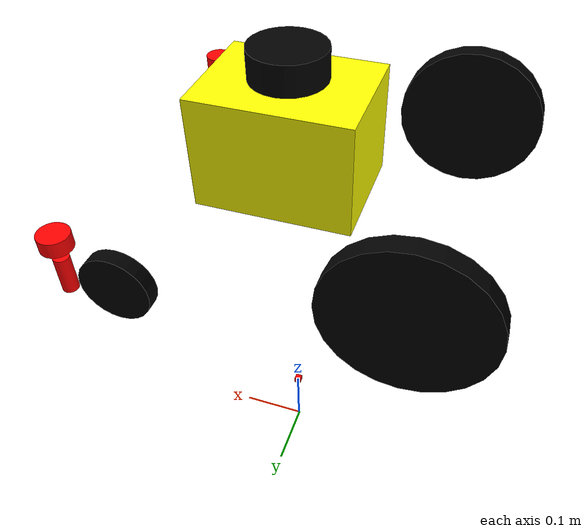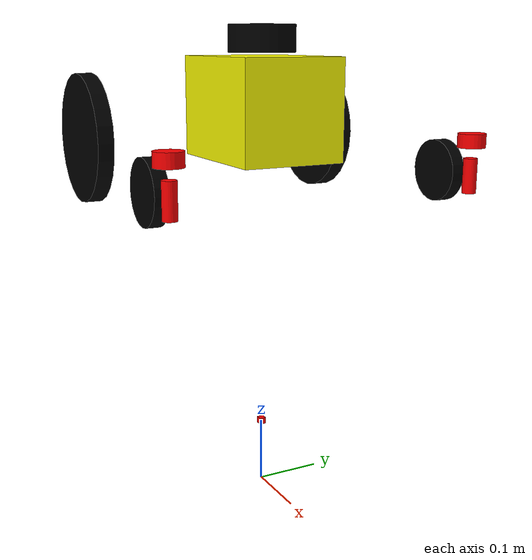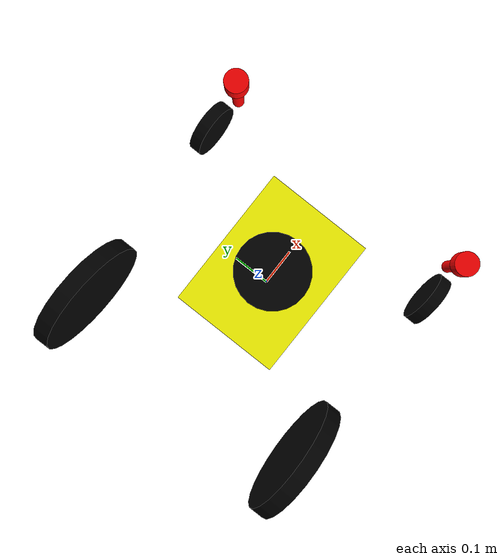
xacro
<?xml version="1.0" encoding="utf-8"?>
<robot name="aug_2024" xmlns:xacro="http://www.ros.org/wiki/xacro">
<xacro:arg name="use_sim" default="false"/>
  <material name="white">
    <color rgba="1 1 1 1"/>
  </material>

  <material name="black">
    <color rgba="0 0 0 1"/>
  </material>

  <material name="red">
    <color rgba="1 0 0 1"/>
  </material>

   <link name="base_link">
    <visual>
      <geometry>
        <box size=".01 .01 .01"/> <!-- 20x18x20 inches -->
      </geometry>
      <material name="red"/>
    </visual>
    <collision>
      <geometry>
        <box size="0 0 0"/>
      </geometry>
    </collision>
    <inertial>
       <mass value="10"/>
       <inertia ixx="0.4" ixy="0.0" ixz="0.0" iyy="0.4" iyz="0.0" izz="0.2"/>
    </inertial>
  </link>

<link name="base_footprint"/>

<joint name="base_joint" type="fixed">
  <parent link="base_footprint"/>
  <child link="base_link"/>
  <origin xyz="0 0 0.1016" rpy="0 0 0"/>
</joint>

<link name="chassis_link">
  <visual>
    <geometry>
      <box size="0.208 0.1572 0.15"/> <!-- 20x18x20 inches -->
    </geometry>
    <material name="chassis_color">
      <color rgba="1 1 0"/>  <!-- Light gray color, adjust as needed -->
    </material>
  </visual>
  <collision>
    <geometry>
      <box size="0.208 0.1572 0.15"/> <!-- 20x18x20 inches -->
    </geometry>
  </collision>
  <inertial>
    <mass value="10"/>  <!-- Adjust mass as appropriate for your robot -->
    <inertia ixx="0.3729" ixy="0.0" ixz="0.0"
             iyy="0.3929" iyz="0.0"
             izz="0.3729"/>
    <!-- Inertia values are approximate. Adjust as needed. -->
  </inertial>
</link>

<joint name="base_to_chassis" type="fixed">
  <parent link="base_link"/>
  <child link="chassis_link"/>
  <origin xyz="0 0 0.5" rpy="0 0 0"/>  <!-- Adjust origin as needed -->
</joint>

<gazebo reference="chassis_link">
  <material>Gazebo/Gray</material>
</gazebo>

   <link name="rear_right_wheel">
    <visual>
      <geometry>
        <cylinder length="0.0254" radius="0.1016"/> <!-- 8 inch diameter -->
      </geometry>
      <material name="black"/>
    </visual>
    <collision>
      <geometry>
        <cylinder length="0.0254" radius="0.1016"/>
      </geometry>
    </collision>
    <inertial>
      <mass value="1"/>
      <inertia ixx="0.01" ixy="0.0" ixz="0.0" iyy="0.01" iyz="0.0" izz="0.01"/>
    </inertial>
  </link>

  <joint name="rear_right_wheel_joint" type="continuous">
    <parent link="chassis_link"/>
    <child link="rear_right_wheel"/>
    <origin xyz="-0.2032 -0.20955 -0.054" rpy="1.5707 0 0"/> <!-- 8 inches back, 8.25 inches right, 10 inches down -->
    <axis xyz="0 0 1"/>
  </joint>

 <!-- Left Wheel -->
  <link name="rear_left_wheel">
    <visual>
      <geometry>
        <cylinder length="0.0254" radius="0.1016"/> <!-- 8 inch diameter -->
      </geometry>
      <material name="black"/>
    </visual>
    <collision>
      <geometry>
        <cylinder length="0.0254" radius="0.1016"/>
      </geometry>
    </collision>
    <inertial>
      <mass value="1"/>
      <inertia ixx="0.01" ixy="0.0" ixz="0.0" iyy="0.01" iyz="0.0" izz="0.01"/>
    </inertial>
  </link>

  <joint name="rear_left_wheel_joint" type="continuous">
    <parent link="chassis_link"/>
    <child link="rear_left_wheel"/>
    <origin xyz="-0.2032 0.20955 -0.054" rpy="1.5707 0 0"/> <!-- 8 inches back, 8.25 inches left, 10 inches down -->
    <axis xyz="0 0 1"/>
  </joint>

  <gazebo reference="rear_left_wheel_joint">
    <provideFeedback>true</provideFeedback>
    <implicitSpringDamper>true</implicitSpringDamper>
  </gazebo>

  <gazebo reference="rear_right_wheel_joint">
    <provideFeedback>true</provideFeedback>
    <implicitSpringDamper>true</implicitSpringDamper>
  </gazebo>

<!-- Right Caster -->
<!-- Right Caster Assembly -->

<!-- Caster Base -->
<link name="right_caster_base">
  <visual>
    <geometry>
      <cylinder length="0.02" radius="0.02"/>
    </geometry>
    <material name="red"/>
  </visual>
  <collision>
    <geometry>
      <cylinder length="0.02" radius="0.02"/>
    </geometry>
  </collision>
  <inertial>
    <mass value="0.1"/>
    <inertia ixx="0.00001" ixy="0" ixz="0" iyy="0.00001" iyz="0" izz="0.00001"/>
  </inertial>
</link>

<joint name="right_caster_base_joint" type="fixed">
  <parent link="chassis_link"/>
  <child link="right_caster_base"/>
  <origin xyz="0.2032 -.2286 -.04"/>
</joint>

<link name="left_caster_base">
  <visual>
    <geometry>
      <cylinder length="0.02" radius="0.02"/>
    </geometry>
    <material name="red"/>
  </visual>
  <collision>
    <geometry>
      <cylinder length="0.02" radius="0.02"/>
    </geometry>
  </collision>
  <inertial>
    <mass value="0.1"/>
    <inertia ixx="0.00001" ixy="0" ixz="0" iyy="0.00001" iyz="0" izz="0.00001"/>
  </inertial>
</link>

<joint name="left_caster_base_joint" type="fixed">
  <parent link="chassis_link"/>
  <child link="left_caster_base"/>
  <origin xyz="0.2032 .2286 -.04"/>
</joint>

<!-- Caster Swivel -->
<link name="right_caster_swivel">
  <visual>
    <geometry>
      <cylinder length="0.05" radius="0.01"/>
    </geometry>
    <material name="red"/>
  </visual>
  <collision>
    <geometry>
      <cylinder length="0.05" radius="0.01"/>
    </geometry>
  </collision>
  <inertial>
    <mass value="0.1"/>
    <inertia ixx="0.00001" ixy="0" ixz="0" iyy="0.00001" iyz="0" izz="0.00001"/>
  </inertial>
</link>

<joint name="right_caster_swivel_joint" type="continuous">
  <parent link="right_caster_base"/>
  <child link="right_caster_swivel"/>
  <axis xyz="0 0 1"/>
  <origin xyz="0 0 -.05"/>
  <dynamics damping="0.5" friction="0.1"/>
</joint>

<link name="left_caster_swivel">
  <visual>
    <geometry>
      <cylinder length="0.05" radius="0.01"/>
    </geometry>
    <material name="red"/>
  </visual>
  <collision>
    <geometry>
      <cylinder length="0.05" radius="0.01"/>
    </geometry>
  </collision>
  <inertial>
    <mass value="0.1"/>
    <inertia ixx="0.00001" ixy="0" ixz="0" iyy="0.00001" iyz="0" izz="0.00001"/>
  </inertial>
</link>

<joint name="left_caster_swivel_joint" type="continuous">
  <parent link="left_caster_base"/>
  <child link="left_caster_swivel"/>
  <axis xyz="0 0 1"/>
  <origin xyz="0 0 -.05"/>
  <dynamics damping="0.5" friction="0.1"/>
</joint>

<!-- Caster Wheel -->
<link name="right_caster_wheel">
  <visual>
    <geometry>
      <cylinder length="0.02" radius="0.0454"/>
    </geometry>
    <material name="black"/>
  </visual>
  <collision>
    <geometry>
      <cylinder length="0.02" radius="0.0454"/>
    </geometry>
  </collision>
  <inertial>
    <mass value="0.1"/>
    <inertia ixx="0.00002" ixy="0" ixz="0" iyy="0.00002" iyz="0" izz="0.00001"/>
  </inertial>
</link>

<joint name="right_caster_wheel_joint" type="continuous">
  <parent link="right_caster_swivel"/>
  <child link="right_caster_wheel"/>
  <origin xyz="-.07 0 0" rpy="1.5707 0 0"/>
  <axis xyz="0 0 1 "/>
  <dynamics damping="0.5" friction="0.1"/>
</joint>

<link name="left_caster_wheel">
  <visual>
    <geometry>
      <cylinder length="0.02" radius="0.0454"/>
    </geometry>
    <material name="black"/>
  </visual>
  <collision>
    <geometry>
      <cylinder length="0.02" radius="0.0454"/>
    </geometry>
  </collision>
  <inertial>
    <mass value="0.1"/>
    <inertia ixx="0.00002" ixy="0" ixz="0" iyy="0.00002" iyz="0" izz="0.00001"/>
  </inertial>
</link>

<joint name="left_caster_wheel_joint" type="continuous">
  <parent link="left_caster_swivel"/>
  <child link="left_caster_wheel"/>
  <origin xyz="-.07 0 0" rpy="1.5707 0 0"/>
  <axis xyz="0 0 1 "/>
  <dynamics damping="0.5" friction="0.1"/>
</joint>

<gazebo reference="right_caster_swivel_joint">
  <implicitSpringDamper>1</implicitSpringDamper>
</gazebo>

<gazebo reference="right_caster_wheel_joint">
  <implicitSpringDamper>1</implicitSpringDamper>
</gazebo>

<gazebo reference="left_caster_swivel_joint">
  <implicitSpringDamper>1</implicitSpringDamper>
</gazebo>

<gazebo reference="left_caster_wheel_joint">
  <implicitSpringDamper>1</implicitSpringDamper>
</gazebo>

<!--LIDAR-->
<link name="lidar_link">
  <visual>
    <geometry>
      <cylinder radius="0.05" length="0.04"/>
    </geometry>
    <material name="black"/>
  </visual>
  <collision>
    <geometry>
      <cylinder radius="0.05" length="0.04"/>
    </geometry>
  </collision>
  <inertial>
    <mass value="0.1"/>
    <inertia ixx="0.000033" ixy="0.0" ixz="0.0" iyy="0.000033" iyz="0.0" izz="0.00006"/>
  </inertial>
</link>

<joint name="lidar_joint" type="fixed">
  <parent link="chassis_link"/>
  <child link="lidar_link"/>
  <origin xyz="0 0 0.1" rpy="0 0 0"/>
</joint>

<gazebo reference="lidar_link">
  <sensor type="ray" name="lidar">
    <pose>0 0 0 0 0 0</pose>
    <visualize>true</visualize>
    <update_rate>10</update_rate>
    <ray>
      <scan>
        <horizontal>
          <samples>360</samples>
          <resolution>1</resolution>
          <min_angle>-3.14159</min_angle>
          <max_angle>3.14159</max_angle>
        </horizontal>
      </scan>
      <range>
        <min>0.3</min>
        <max>12.0</max>
        <resolution>0.01</resolution>
      </range>
    </ray>
    <plugin name="gazebo_ros_lidar_controller" filename="libgazebo_ros_ray_sensor.so">
      <ros>
        <namespace>/</namespace>
        <remapping>~/out:=scan</remapping>
      </ros>
      <output_type>sensor_msgs/msg/LaserScan</output_type>
      <frame_name>lidar_link</frame_name>
    </plugin>
  </sensor>
</gazebo>

<!--ROS CONTROL SECTION-->
<ros2_control name="AUG2024System" type="system">
  <xacro:if value="$(arg use_sim)">
    <hardware>
      <plugin>gazebo_ros2_control/GazeboSystem</plugin>
    </hardware>
  </xacro:if>
  <xacro:unless value="$(arg use_sim)">
    <hardware>
      <plugin>BMC_2024/AUG2024Hardware</plugin>
      <param name="rear_left_wheel_name">rear_left_wheel_joint</param>
      <param name="rear_right_wheel_name">rear_right_wheel_joint</param>
      <param name="can_interface">can0</param>
      <param name="can_rl_id">183</param>
      <param name="can_rr_id">178</param>
      <param name="rl_mult">1.0</param>
      <param name="rr_mult">-1.0</param>
      <param name="pid_p">0.5</param>
      <param name="pid_i">10.0</param>
      <param name="pid_d">0.0</param>
    </hardware>
  </xacro:unless>

  <joint name="rear_left_wheel_joint">
    <command_interface name="velocity">
      <param name="min">-10</param>
      <param name="max">10</param>
    </command_interface>
    <state_interface name="velocity"/>
    <state_interface name="position"/>
  </joint>
  <joint name="rear_right_wheel_joint">
    <command_interface name="velocity">
      <param name="min">-10</param>
      <param name="max">10</param>
    </command_interface>
    <state_interface name="velocity"/>
    <state_interface name="position"/>
  </joint>
</ros2_control>

    <gazebo reference="base_link">
      <material>Gazebo/Red</material>
    </gazebo>

    <gazebo>
      <plugin name="gazebo_ros2_control" filename="libgazebo_ros2_control.so">
         <parameters>$(find aug_2024)/config/flippo_controllers.yaml</parameters>
      </plugin>
    </gazebo>

    <gazebo>
      <plugin name="gazebo_ros_state" filename="libgazebo_ros_state.so">
        <update_rate>10</update_rate>
      </plugin>
    </gazebo>

    <gazebo reference="rear_left_wheel">
      <material>Gazebo/Black</material>
      <mu1 value="1.0"/>
      <mu2 value="1.0"/>
      <kp value="10000000.0" />
      <kd value="1.0" />
    </gazebo>

    <gazebo reference="rear_right_wheel">
      <material>Gazebo/Black</material>
      <mu1 value="1.0"/>
      <mu2 value="1.0"/>
      <kp value="10000000.0" />
      <kd value="1.0" />
    </gazebo>

</robot>
